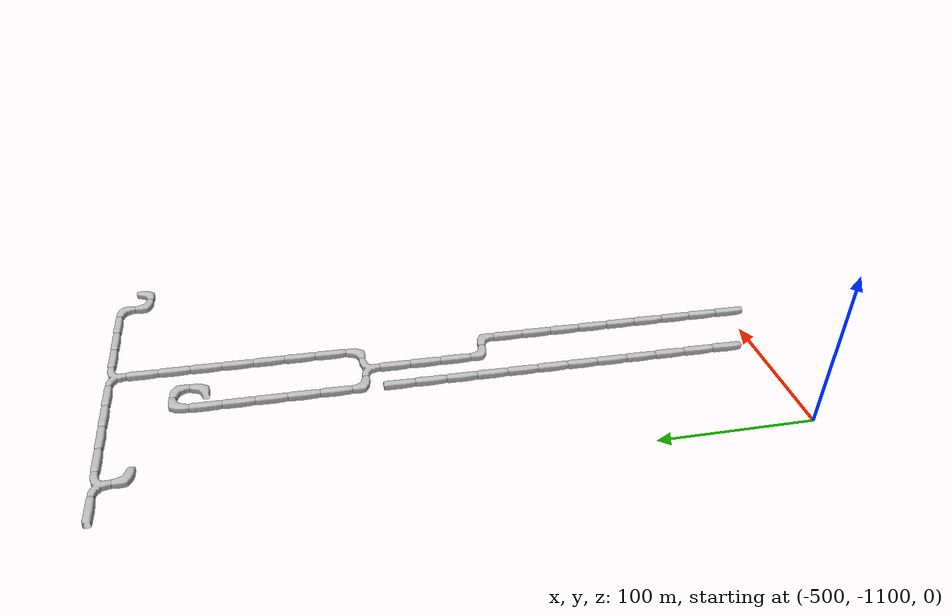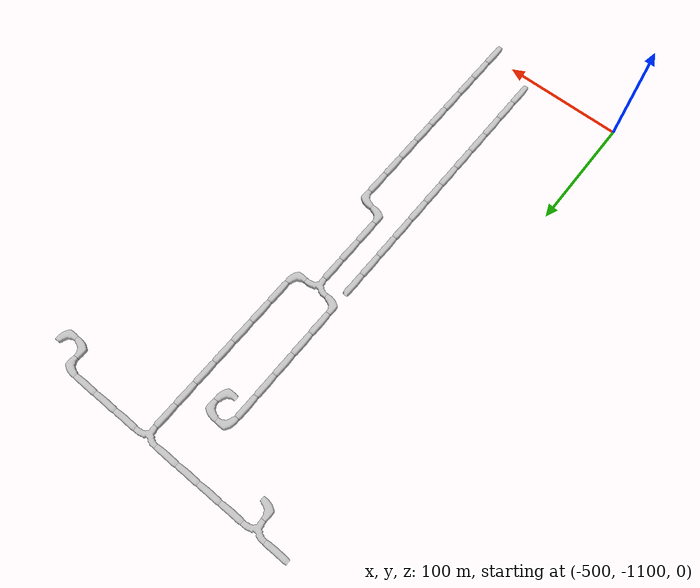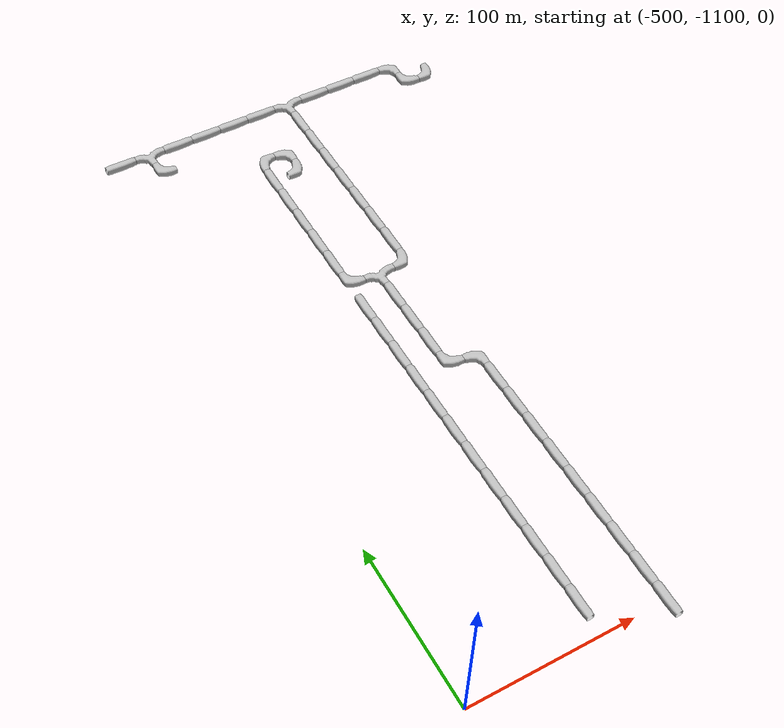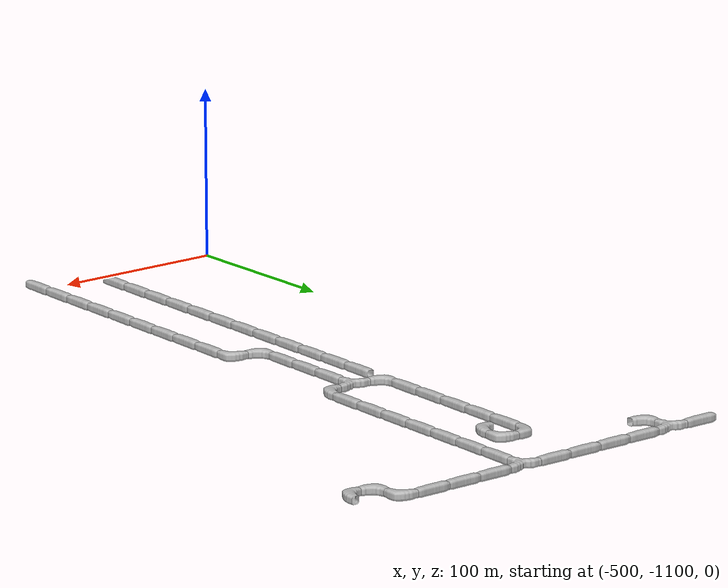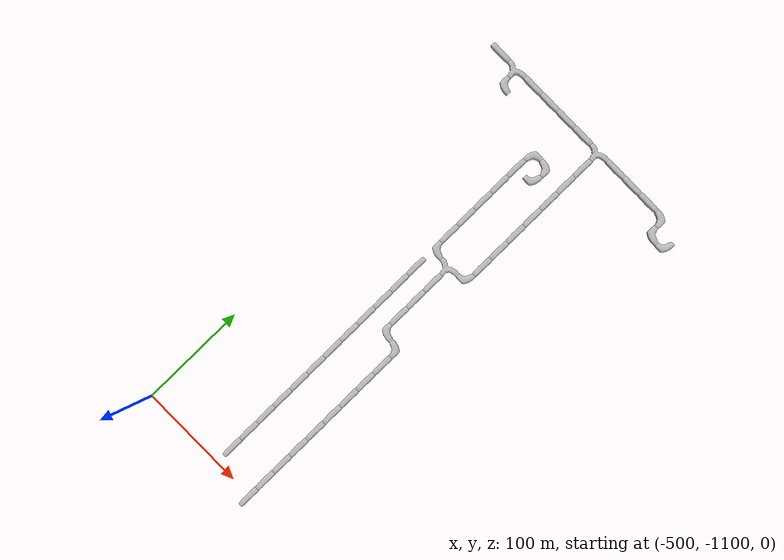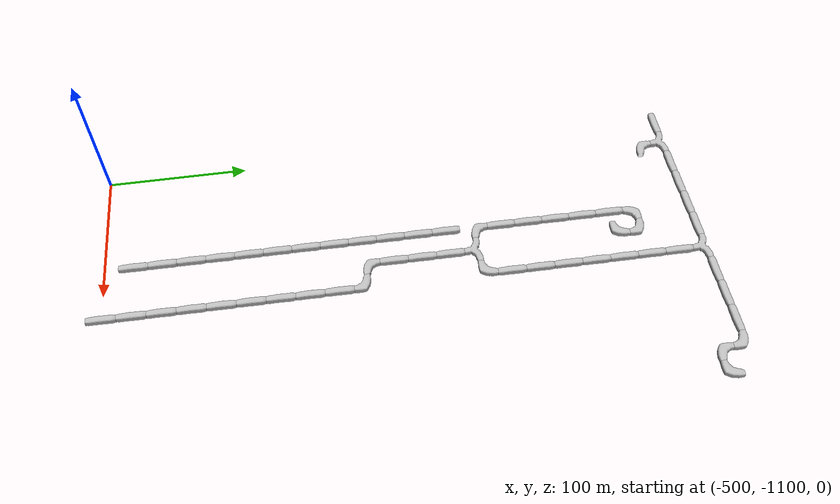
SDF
<sdf version="1.6">
 <world name="cave_32000_4">
  <include>
   <static>true</static>
   <name>cave_-21_-54</name>
   <pose>-420 -1080 0 0 0 0.0</pose>
   <uri>model://cave_straight_20m</uri>
  </include>
  <include>
   <static>true</static>
   <name>cave_-21_-53</name>
   <pose>-420 -1060 0 0 0 0.0</pose>
   <uri>model://cave_straight_20m</uri>
  </include>
  <include>
   <static>true</static>
   <name>cave_-21_-52</name>
   <pose>-420 -1040 0 0 0 0.0</pose>
   <uri>model://cave_straight_20m</uri>
  </include>
  <include>
   <static>true</static>
   <name>cave_-21_-51</name>
   <pose>-420 -1020 0 0 0 0.0</pose>
   <uri>model://cave_straight_20m</uri>
  </include>
  <include>
   <static>true</static>
   <name>cave_-21_-50</name>
   <pose>-420 -1000 0 0 0 0.0</pose>
   <uri>model://cave_straight_20m</uri>
  </include>
  <include>
   <static>true</static>
   <name>cave_-21_-49</name>
   <pose>-420 -980 0 0 0 0.0</pose>
   <uri>model://cave_straight_20m</uri>
  </include>
  <include>
   <static>true</static>
   <name>cave_-21_-48</name>
   <pose>-420 -960 0 0 0 0.0</pose>
   <uri>model://cave_straight_20m</uri>
  </include>
  <include>
   <static>true</static>
   <name>cave_-21_-47</name>
   <pose>-420 -940 0 0 0 0.0</pose>
   <uri>model://cave_straight_20m</uri>
  </include>
  <include>
   <static>true</static>
   <name>cave_-21_-46</name>
   <pose>-420 -920 0 0 0 0.0</pose>
   <uri>model://cave_straight_20m</uri>
  </include>
  <include>
   <static>true</static>
   <name>cave_-21_-45</name>
   <pose>-420 -900 0 0 0 0.0</pose>
   <uri>model://cave_straight_20m</uri>
  </include>
  <include>
   <static>true</static>
   <name>cave_-21_-44</name>
   <pose>-420 -880 0 0 0 0.0</pose>
   <uri>model://cave_straight_20m</uri>
  </include>
  <include>
   <static>true</static>
   <name>cave_-21_-43</name>
   <pose>-420 -860 0 0 0 0.0</pose>
   <uri>model://cave_straight_20m</uri>
  </include>
  <include>
   <static>true</static>
   <name>cave_-19_-55</name>
   <pose>-380 -1100 0 0 0 0.0</pose>
   <uri>model://cave_straight_20m</uri>
  </include>
  <include>
   <static>true</static>
   <name>cave_-19_-54</name>
   <pose>-380 -1080 0 0 0 0.0</pose>
   <uri>model://cave_straight_20m</uri>
  </include>
  <include>
   <static>true</static>
   <name>cave_-19_-53</name>
   <pose>-380 -1060 0 0 0 0.0</pose>
   <uri>model://cave_straight_20m</uri>
  </include>
  <include>
   <static>true</static>
   <name>cave_-19_-52</name>
   <pose>-380 -1040 0 0 0 0.0</pose>
   <uri>model://cave_straight_20m</uri>
  </include>
  <include>
   <static>true</static>
   <name>cave_-19_-51</name>
   <pose>-380 -1020 0 0 0 0.0</pose>
   <uri>model://cave_straight_20m</uri>
  </include>
  <include>
   <static>true</static>
   <name>cave_-19_-50</name>
   <pose>-380 -1000 0 0 0 0.0</pose>
   <uri>model://cave_straight_20m</uri>
  </include>
  <include>
   <static>true</static>
   <name>cave_-19_-49</name>
   <pose>-380 -980 0 0 0 0.0</pose>
   <uri>model://cave_straight_20m</uri>
  </include>
  <include>
   <static>true</static>
   <name>cave_-19_-48</name>
   <pose>-380 -960 0 0 0 0.0</pose>
   <uri>model://cave_straight_20m</uri>
  </include>
  <include>
   <static>true</static>
   <name>cave_-19_-47</name>
   <pose>-380 -940 0 0 0 0.0</pose>
   <uri>model://cave_straight_20m</uri>
  </include>
  <include>
   <static>true</static>
   <name>cave_-19_-46</name>
   <pose>-380 -920 0 0 0 3.141592653589793</pose>
   <uri>model://cave_L_20m</uri>
  </include>
  <include>
   <static>true</static>
   <name>cave_-20_-46</name>
   <pose>-400 -920 0 0 0 0.0</pose>
   <uri>model://cave_L_20m</uri>
  </include>
  <include>
   <static>true</static>
   <name>cave_-20_-45</name>
   <pose>-400 -900 0 0 0 0.0</pose>
   <uri>model://cave_straight_20m</uri>
  </include>
  <include>
   <static>true</static>
   <name>cave_-20_-44</name>
   <pose>-400 -880 0 0 0 0.0</pose>
   <uri>model://cave_straight_20m</uri>
  </include>
  <include>
   <static>true</static>
   <name>cave_-20_-43</name>
   <pose>-400 -860 0 0 0 0.0</pose>
   <uri>model://cave_straight_20m</uri>
  </include>
  <include>
   <static>true</static>
   <name>cave_-20_-42</name>
   <pose>-400 -840 0 0 0 3.141592653589793</pose>
   <uri>model://cave_3way_20m</uri>
  </include>
  <include>
   <static>true</static>
   <name>cave_-19_-42</name>
   <pose>-380 -840 0 0 0 1.5707963267948966</pose>
   <uri>model://cave_L_20m</uri>
  </include>
  <include>
   <static>true</static>
   <name>cave_-19_-41</name>
   <pose>-380 -820 0 0 0 0.0</pose>
   <uri>model://cave_straight_20m</uri>
  </include>
  <include>
   <static>true</static>
   <name>cave_-19_-40</name>
   <pose>-380 -800 0 0 0 0.0</pose>
   <uri>model://cave_straight_20m</uri>
  </include>
  <include>
   <static>true</static>
   <name>cave_-19_-39</name>
   <pose>-380 -780 0 0 0 0.0</pose>
   <uri>model://cave_straight_20m</uri>
  </include>
  <include>
   <static>true</static>
   <name>cave_-19_-38</name>
   <pose>-380 -760 0 0 0 0.0</pose>
   <uri>model://cave_straight_20m</uri>
  </include>
  <include>
   <static>true</static>
   <name>cave_-19_-37</name>
   <pose>-380 -740 0 0 0 0.0</pose>
   <uri>model://cave_straight_20m</uri>
  </include>
  <include>
   <static>true</static>
   <name>cave_-19_-36</name>
   <pose>-380 -720 0 0 0 0.0</pose>
   <uri>model://cave_straight_20m</uri>
  </include>
  <include>
   <static>true</static>
   <name>cave_-19_-35</name>
   <pose>-380 -700 0 0 0 0.0</pose>
   <uri>model://cave_straight_20m</uri>
  </include>
  <include>
   <static>true</static>
   <name>cave_-19_-34</name>
   <pose>-380 -680 0 0 0 3.141592653589793</pose>
   <uri>model://cave_3way_20m</uri>
  </include>
  <include>
   <static>true</static>
   <name>cave_-18_-34</name>
   <pose>-360 -680 0 0 0 1.5707963267948966</pose>
   <uri>model://cave_straight_20m</uri>
  </include>
  <include>
   <static>true</static>
   <name>cave_-17_-34</name>
   <pose>-340 -680 0 0 0 1.5707963267948966</pose>
   <uri>model://cave_straight_20m</uri>
  </include>
  <include>
   <static>true</static>
   <name>cave_-16_-34</name>
   <pose>-320 -680 0 0 0 1.5707963267948966</pose>
   <uri>model://cave_straight_20m</uri>
  </include>
  <include>
   <static>true</static>
   <name>cave_-15_-34</name>
   <pose>-300 -680 0 0 0 3.141592653589793</pose>
   <uri>model://cave_L_20m</uri>
  </include>
  <include>
   <static>true</static>
   <name>cave_-15_-35</name>
   <pose>-300 -700 0 0 0 0.0</pose>
   <uri>model://cave_L_20m</uri>
  </include>
  <include>
   <static>true</static>
   <name>cave_-14_-35</name>
   <pose>-280 -700 0 0 0 1.5707963267948966</pose>
   <uri>model://cave_L_20m</uri>
  </include>
  <include>
   <static>true</static>
   <name>cave_-20_-34</name>
   <pose>-400 -680 0 0 0 1.5707963267948966</pose>
   <uri>model://cave_straight_20m</uri>
  </include>
  <include>
   <static>true</static>
   <name>cave_-21_-34</name>
   <pose>-420 -680 0 0 0 1.5707963267948966</pose>
   <uri>model://cave_straight_20m</uri>
  </include>
  <include>
   <static>true</static>
   <name>cave_-22_-34</name>
   <pose>-440 -680 0 0 0 1.5707963267948966</pose>
   <uri>model://cave_straight_20m</uri>
  </include>
  <include>
   <static>true</static>
   <name>cave_-23_-34</name>
   <pose>-460 -680 0 0 0 1.5707963267948966</pose>
   <uri>model://cave_straight_20m</uri>
  </include>
  <include>
   <static>true</static>
   <name>cave_-24_-34</name>
   <pose>-480 -680 0 0 0 3.141592653589793</pose>
   <uri>model://cave_3way_20m</uri>
  </include>
  <include>
   <static>true</static>
   <name>cave_-24_-35</name>
   <pose>-480 -700 0 0 0 0.0</pose>
   <uri>model://cave_L_20m</uri>
  </include>
  <include>
   <static>true</static>
   <name>cave_-25_-34</name>
   <pose>-500 -680 0 0 0 1.5707963267948966</pose>
   <uri>model://cave_straight_20m</uri>
  </include>
  <include>
   <static>true</static>
   <name>cave_-21_-42</name>
   <pose>-420 -840 0 0 0 0.0</pose>
   <uri>model://cave_L_20m</uri>
  </include>
  <include>
   <static>true</static>
   <name>cave_-21_-41</name>
   <pose>-420 -820 0 0 0 0.0</pose>
   <uri>model://cave_straight_20m</uri>
  </include>
  <include>
   <static>true</static>
   <name>cave_-21_-40</name>
   <pose>-420 -800 0 0 0 0.0</pose>
   <uri>model://cave_straight_20m</uri>
  </include>
  <include>
   <static>true</static>
   <name>cave_-21_-39</name>
   <pose>-420 -780 0 0 0 0.0</pose>
   <uri>model://cave_straight_20m</uri>
  </include>
  <include>
   <static>true</static>
   <name>cave_-21_-38</name>
   <pose>-420 -760 0 0 0 0.0</pose>
   <uri>model://cave_straight_20m</uri>
  </include>
  <include>
   <static>true</static>
   <name>cave_-21_-37</name>
   <pose>-420 -740 0 0 0 0.0</pose>
   <uri>model://cave_straight_20m</uri>
  </include>
  <include>
   <static>true</static>
   <name>cave_-21_-36</name>
   <pose>-420 -720 0 0 0 -1.5707963267948966</pose>
   <uri>model://cave_L_20m</uri>
  </include>
  <include>
   <static>true</static>
   <name>cave_-20_-36</name>
   <pose>-400 -720 0 0 0 3.141592653589793</pose>
   <uri>model://cave_L_20m</uri>
  </include>
  <include>
   <static>true</static>
   <name>cave_-20_-37</name>
   <pose>-400 -740 0 0 0 1.5707963267948966</pose>
   <uri>model://cave_L_20m</uri>
  </include>
 </world>
</sdf>
